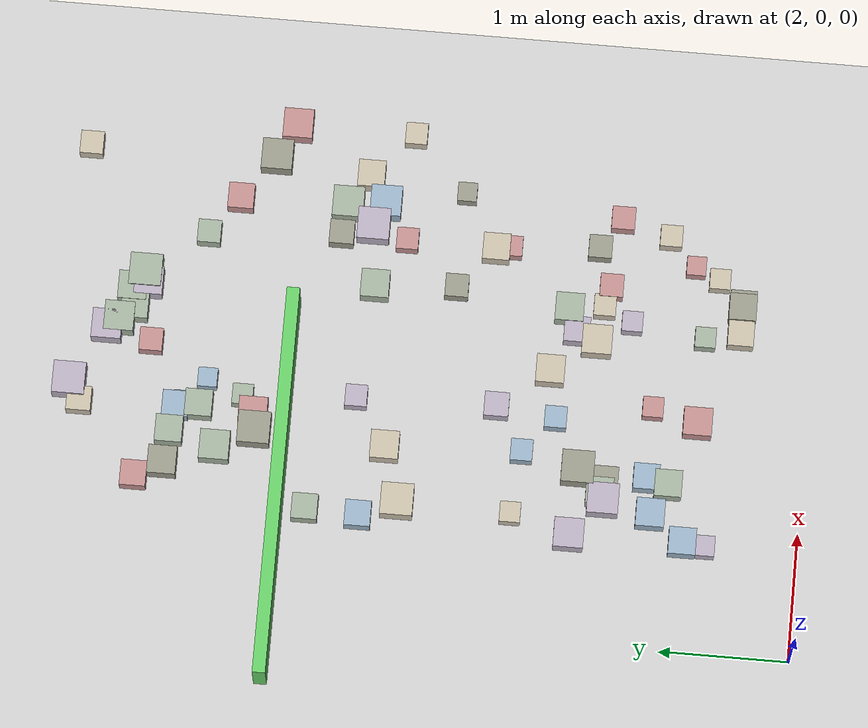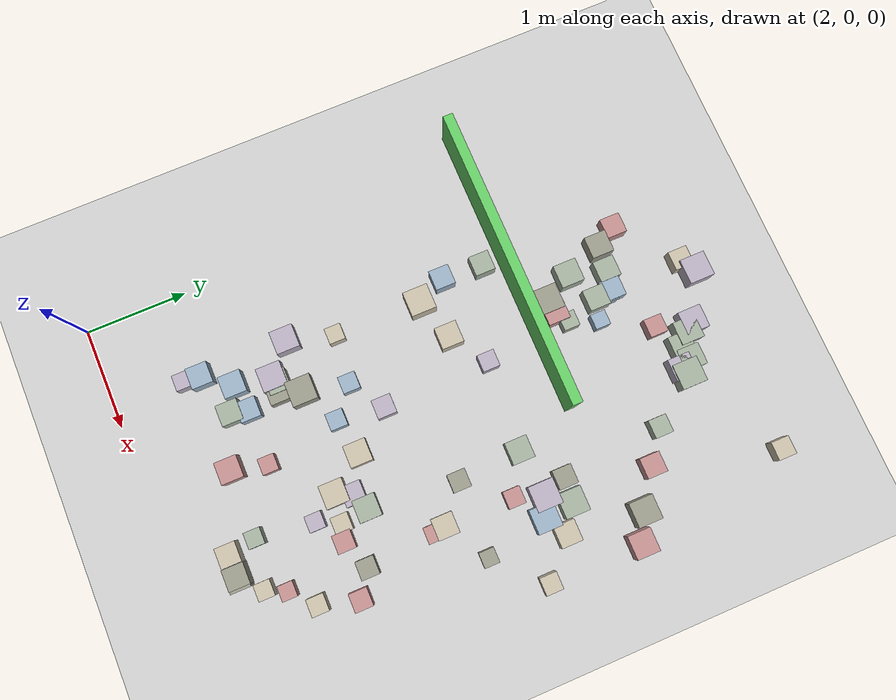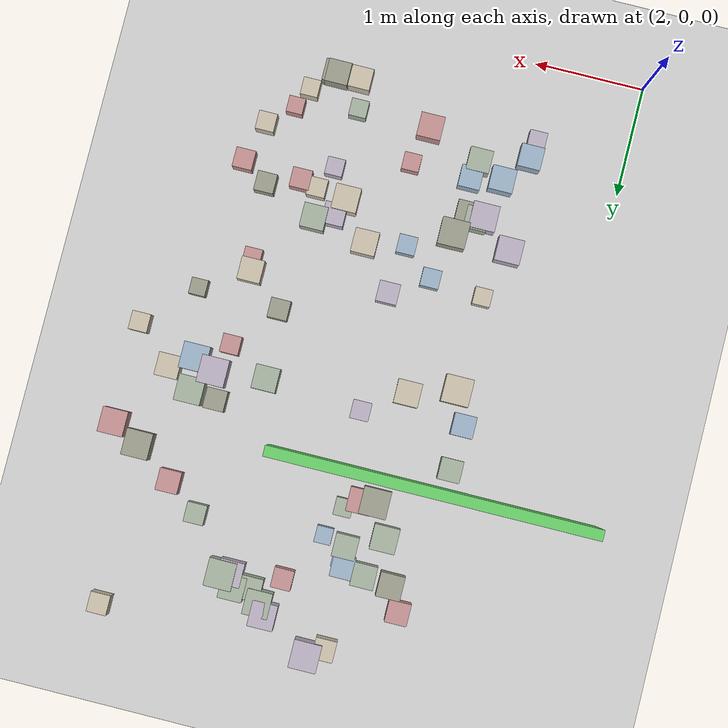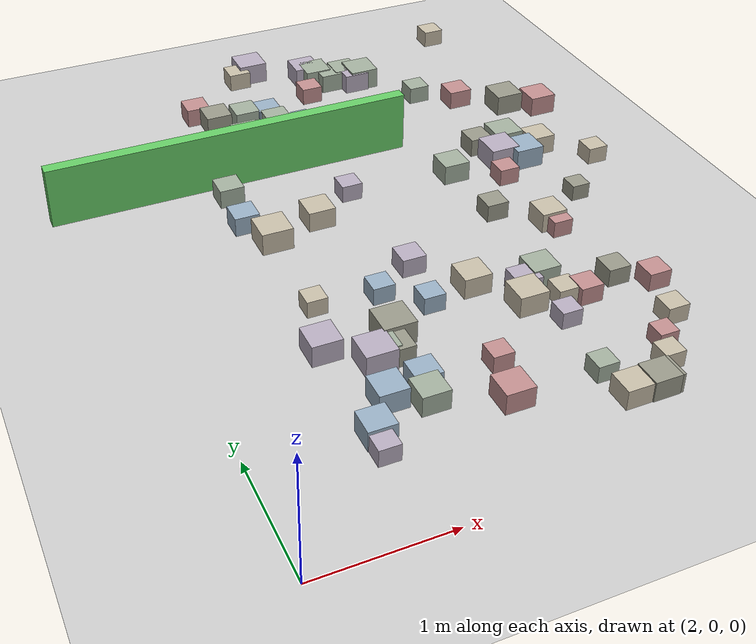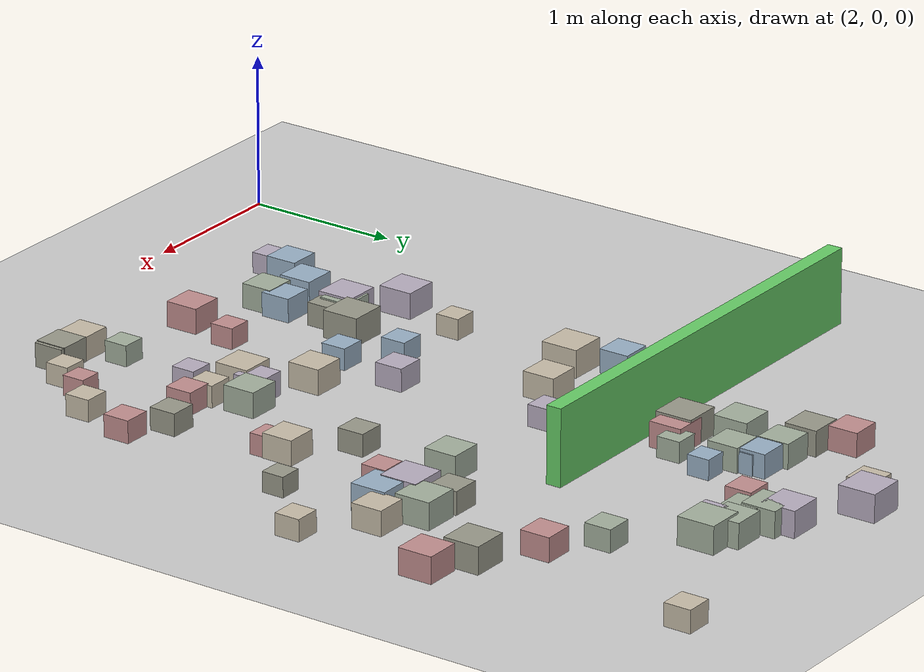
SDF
<sdf version="1.6">
 <world name="small_maze_world">
  <include><uri>model://ground_plane</uri></include>
  <include><uri>model://sun</uri></include>
  <model name="maze_wall_3">
   <static>true</static>
   <pose>3 4 0.25 0 0 0</pose>
   <link name="link">
    <collision name="collision"><geometry><box><size>3 0.1 0.5</size></box></geometry></collision>
    <visual name="visual">
     <geometry><box><size>3 0.1 0.5</size></box></geometry>
     <material><ambient>0.4 0.8 0.4 1</ambient></material>
    </visual>
   </link>
  </model>
  <model name="box_2">
   <static>false</static>
   <pose>4.61 1.88 0.05 0 0 0</pose>
   <link name="link">
    <inertial>
     <mass>0.2</mass>
     <inertia><ixx>0.001</ixx><iyy>0.001</iyy><izz>0.001</izz><ixy>0</ixy><ixz>0</ixz><iyz>0</iyz></inertia>
    </inertial>
    <collision name="collision"><geometry><box><size>0.22 0.22 0.22</size></box></geometry></collision>
    <visual name="visual">
     <geometry><box><size>0.22 0.22 0.22</size></box></geometry>
     <material><ambient>0.64 0.69 0.62 1</ambient><diffuse>0.64 0.69 0.62 1</diffuse></material>
    </visual>
   </link>
  </model>
  <model name="box_4">
   <static>false</static>
   <pose>3.29 1.02 0.05 0 0 0</pose>
   <link name="link">
    <inertial>
     <mass>0.2</mass>
     <inertia><ixx>0.001</ixx><iyy>0.001</iyy><izz>0.001</izz><ixy>0</ixy><ixz>0</ixz><iyz>0</iyz></inertia>
    </inertial>
    <collision name="collision"><geometry><box><size>0.21 0.21 0.21</size></box></geometry></collision>
    <visual name="visual">
     <geometry><box><size>0.21 0.21 0.21</size></box></geometry>
     <material><ambient>0.64 0.69 0.62 1</ambient><diffuse>0.64 0.69 0.62 1</diffuse></material>
    </visual>
   </link>
  </model>
  <model name="box_8">
   <static>false</static>
   <pose>4.44 1.81 0.05 0 0 0</pose>
   <link name="link">
    <inertial>
     <mass>0.2</mass>
     <inertia><ixx>0.001</ixx><iyy>0.001</iyy><izz>0.001</izz><ixy>0</ixy><ixz>0</ixz><iyz>0</iyz></inertia>
    </inertial>
    <collision name="collision"><geometry><box><size>0.2 0.2 0.2</size></box></geometry></collision>
    <visual name="visual">
     <geometry><box><size>0.2 0.2 0.2</size></box></geometry>
     <material><ambient>0.72 0.68 0.75 1</ambient><diffuse>0.72 0.68 0.75 1</diffuse></material>
    </visual>
   </link>
  </model>
  <model name="box_10">
   <static>false</static>
   <pose>5.89 3.17 0.05 0 0 0</pose>
   <link name="link">
    <inertial>
     <mass>0.2</mass>
     <inertia><ixx>0.001</ixx><iyy>0.001</iyy><izz>0.001</izz><ixy>0</ixy><ixz>0</ixz><iyz>0</iyz></inertia>
    </inertial>
    <collision name="collision"><geometry><box><size>0.17 0.17 0.17</size></box></geometry></collision>
    <visual name="visual">
     <geometry><box><size>0.17 0.17 0.17</size></box></geometry>
     <material><ambient>0.78 0.74 0.66 1</ambient><diffuse>0.78 0.74 0.66 1</diffuse></material>
    </visual>
   </link>
  </model>
  <model name="box_21">
   <static>false</static>
   <pose>5.11 1.68 0.05 0 0 0</pose>
   <link name="link">
    <inertial>
     <mass>0.2</mass>
     <inertia><ixx>0.001</ixx><iyy>0.001</iyy><izz>0.001</izz><ixy>0</ixy><ixz>0</ixz><iyz>0</iyz></inertia>
    </inertial>
    <collision name="collision"><geometry><box><size>0.18 0.18 0.18</size></box></geometry></collision>
    <visual name="visual">
     <geometry><box><size>0.18 0.18 0.18</size></box></geometry>
     <material><ambient>0.6 0.6 0.54 1</ambient><diffuse>0.6 0.6 0.54 1</diffuse></material>
    </visual>
   </link>
  </model>
  <model name="box_22">
   <static>false</static>
   <pose>3.6 4.84 0.05 0 0 0</pose>
   <link name="link">
    <inertial>
     <mass>0.2</mass>
     <inertia><ixx>0.001</ixx><iyy>0.001</iyy><izz>0.001</izz><ixy>0</ixy><ixz>0</ixz><iyz>0</iyz></inertia>
    </inertial>
    <collision name="collision"><geometry><box><size>0.2 0.2 0.2</size></box></geometry></collision>
    <visual name="visual">
     <geometry><box><size>0.2 0.2 0.2</size></box></geometry>
     <material><ambient>0.6 0.69 0.77 1</ambient><diffuse>0.6 0.69 0.77 1</diffuse></material>
    </visual>
   </link>
  </model>
  <model name="box_34">
   <static>false</static>
   <pose>3.03 5.11 0.05 0 0 0</pose>
   <link name="link">
    <inertial>
     <mass>0.2</mass>
     <inertia><ixx>0.001</ixx><iyy>0.001</iyy><izz>0.001</izz><ixy>0</ixy><ixz>0</ixz><iyz>0</iyz></inertia>
    </inertial>
    <collision name="collision"><geometry><box><size>0.2 0.2 0.2</size></box></geometry></collision>
    <visual name="visual">
     <geometry><box><size>0.2 0.2 0.2</size></box></geometry>
     <material><ambient>0.76 0.56 0.56 1</ambient><diffuse>0.76 0.56 0.56 1</diffuse></material>
    </visual>
   </link>
  </model>
  <model name="box_46">
   <static>false</static>
   <pose>5.24 1.14 0.05 0 0 0</pose>
   <link name="link">
    <inertial>
     <mass>0.2</mass>
     <inertia><ixx>0.001</ixx><iyy>0.001</iyy><izz>0.001</izz><ixy>0</ixy><ixz>0</ixz><iyz>0</iyz></inertia>
    </inertial>
    <collision name="collision"><geometry><box><size>0.17 0.17 0.17</size></box></geometry></collision>
    <visual name="visual">
     <geometry><box><size>0.17 0.17 0.17</size></box></geometry>
     <material><ambient>0.78 0.74 0.66 1</ambient><diffuse>0.78 0.74 0.66 1</diffuse></material>
    </visual>
   </link>
  </model>
  <model name="box_49">
   <static>false</static>
   <pose>3.8 2.38 0.05 0 0 0</pose>
   <link name="link">
    <inertial>
     <mass>0.2</mass>
     <inertia><ixx>0.001</ixx><iyy>0.001</iyy><izz>0.001</izz><ixy>0</ixy><ixz>0</ixz><iyz>0</iyz></inertia>
    </inertial>
    <collision name="collision"><geometry><box><size>0.19 0.19 0.19</size></box></geometry></collision>
    <visual name="visual">
     <geometry><box><size>0.19 0.19 0.19</size></box></geometry>
     <material><ambient>0.72 0.68 0.75 1</ambient><diffuse>0.72 0.68 0.75 1</diffuse></material>
    </visual>
   </link>
  </model>
  <model name="box_51">
   <static>false</static>
   <pose>5.35 1.52 0.05 0 0 0</pose>
   <link name="link">
    <inertial>
     <mass>0.2</mass>
     <inertia><ixx>0.001</ixx><iyy>0.001</iyy><izz>0.001</izz><ixy>0</ixy><ixz>0</ixz><iyz>0</iyz></inertia>
    </inertial>
    <collision name="collision"><geometry><box><size>0.18 0.18 0.18</size></box></geometry></collision>
    <visual name="visual">
     <geometry><box><size>0.18 0.18 0.18</size></box></geometry>
     <material><ambient>0.76 0.56 0.56 1</ambient><diffuse>0.76 0.56 0.56 1</diffuse></material>
    </visual>
   </link>
  </model>
  <model name="box_54">
   <static>false</static>
   <pose>5.89 4.09 0.05 0 0 0</pose>
   <link name="link">
    <inertial>
     <mass>0.2</mass>
     <inertia><ixx>0.001</ixx><iyy>0.001</iyy><izz>0.001</izz><ixy>0</ixy><ixz>0</ixz><iyz>0</iyz></inertia>
    </inertial>
    <collision name="collision"><geometry><box><size>0.23 0.23 0.23</size></box></geometry></collision>
    <visual name="visual">
     <geometry><box><size>0.23 0.23 0.23</size></box></geometry>
     <material><ambient>0.76 0.56 0.56 1</ambient><diffuse>0.76 0.56 0.56 1</diffuse></material>
    </visual>
   </link>
  </model>
  <model name="box_60">
   <static>false</static>
   <pose>5.54 3.49 0.05 0 0 0</pose>
   <link name="link">
    <inertial>
     <mass>0.2</mass>
     <inertia><ixx>0.001</ixx><iyy>0.001</iyy><izz>0.001</izz><ixy>0</ixy><ixz>0</ixz><iyz>0</iyz></inertia>
    </inertial>
    <collision name="collision"><geometry><box><size>0.21 0.21 0.21</size></box></geometry></collision>
    <visual name="visual">
     <geometry><box><size>0.21 0.21 0.21</size></box></geometry>
     <material><ambient>0.78 0.74 0.66 1</ambient><diffuse>0.78 0.74 0.66 1</diffuse></material>
    </visual>
   </link>
  </model>
  <model name="box_64">
   <static>false</static>
   <pose>3.05 1.14 0.05 0 0 0</pose>
   <link name="link">
    <inertial>
     <mass>0.2</mass>
     <inertia><ixx>0.001</ixx><iyy>0.001</iyy><izz>0.001</izz><ixy>0</ixy><ixz>0</ixz><iyz>0</iyz></inertia>
    </inertial>
    <collision name="collision"><geometry><box><size>0.22 0.22 0.22</size></box></geometry></collision>
    <visual name="visual">
     <geometry><box><size>0.22 0.22 0.22</size></box></geometry>
     <material><ambient>0.6 0.69 0.77 1</ambient><diffuse>0.6 0.69 0.77 1</diffuse></material>
    </visual>
   </link>
  </model>
  <model name="box_66">
   <static>false</static>
   <pose>4.93 0.74 0.05 0 0 0</pose>
   <link name="link">
    <inertial>
     <mass>0.2</mass>
     <inertia><ixx>0.001</ixx><iyy>0.001</iyy><izz>0.001</izz><ixy>0</ixy><ixz>0</ixz><iyz>0</iyz></inertia>
    </inertial>
    <collision name="collision"><geometry><box><size>0.16 0.16 0.16</size></box></geometry></collision>
    <visual name="visual">
     <geometry><box><size>0.16 0.16 0.16</size></box></geometry>
     <material><ambient>0.78 0.74 0.66 1</ambient><diffuse>0.78 0.74 0.66 1</diffuse></material>
    </visual>
   </link>
  </model>
  <model name="box_78">
   <static>false</static>
   <pose>4.55 5.13 0.05 0 0 0</pose>
   <link name="link">
    <inertial>
     <mass>0.2</mass>
     <inertia><ixx>0.001</ixx><iyy>0.001</iyy><izz>0.001</izz><ixy>0</ixy><ixz>0</ixz><iyz>0</iyz></inertia>
    </inertial>
    <collision name="collision"><geometry><box><size>0.22 0.22 0.22</size></box></geometry></collision>
    <visual name="visual">
     <geometry><box><size>0.22 0.22 0.22</size></box></geometry>
     <material><ambient>0.72 0.68 0.75 1</ambient><diffuse>0.72 0.68 0.75 1</diffuse></material>
    </visual>
   </link>
  </model>
  <model name="box_79">
   <static>false</static>
   <pose>5.14 3.44 0.05 0 0 0</pose>
   <link name="link">
    <inertial>
     <mass>0.2</mass>
     <inertia><ixx>0.001</ixx><iyy>0.001</iyy><izz>0.001</izz><ixy>0</ixy><ixz>0</ixz><iyz>0</iyz></inertia>
    </inertial>
    <collision name="collision"><geometry><box><size>0.25 0.25 0.25</size></box></geometry></collision>
    <visual name="visual">
     <geometry><box><size>0.25 0.25 0.25</size></box></geometry>
     <material><ambient>0.72 0.68 0.75 1</ambient><diffuse>0.72 0.68 0.75 1</diffuse></material>
    </visual>
   </link>
  </model>
  <model name="box_88">
   <static>false</static>
   <pose>4.54 1.39 0.05 0 0 0</pose>
   <link name="link">
    <inertial>
     <mass>0.2</mass>
     <inertia><ixx>0.001</ixx><iyy>0.001</iyy><izz>0.001</izz><ixy>0</ixy><ixz>0</ixz><iyz>0</iyz></inertia>
    </inertial>
    <collision name="collision"><geometry><box><size>0.16 0.16 0.16</size></box></geometry></collision>
    <visual name="visual">
     <geometry><box><size>0.16 0.16 0.16</size></box></geometry>
     <material><ambient>0.72 0.68 0.75 1</ambient><diffuse>0.72 0.68 0.75 1</diffuse></material>
    </visual>
   </link>
  </model>
  <model name="box_91">
   <static>false</static>
   <pose>4.5 5.25 0.05 0 0 0</pose>
   <link name="link">
    <inertial>
     <mass>0.2</mass>
     <inertia><ixx>0.001</ixx><iyy>0.001</iyy><izz>0.001</izz><ixy>0</ixy><ixz>0</ixz><iyz>0</iyz></inertia>
    </inertial>
    <collision name="collision"><geometry><box><size>0.22 0.22 0.22</size></box></geometry></collision>
    <visual name="visual">
     <geometry><box><size>0.22 0.22 0.22</size></box></geometry>
     <material><ambient>0.64 0.69 0.62 1</ambient><diffuse>0.64 0.69 0.62 1</diffuse></material>
    </visual>
   </link>
  </model>
  <model name="box_102">
   <static>false</static>
   <pose>5.06 2.36 0.05 0 0 0</pose>
   <link name="link">
    <inertial>
     <mass>0.2</mass>
     <inertia><ixx>0.001</ixx><iyy>0.001</iyy><izz>0.001</izz><ixy>0</ixy><ixz>0</ixz><iyz>0</iyz></inertia>
    </inertial>
    <collision name="collision"><geometry><box><size>0.16 0.16 0.16</size></box></geometry></collision>
    <visual name="visual">
     <geometry><box><size>0.16 0.16 0.16</size></box></geometry>
     <material><ambient>0.76 0.56 0.56 1</ambient><diffuse>0.76 0.56 0.56 1</diffuse></material>
    </visual>
   </link>
  </model>
  <model name="box_107">
   <static>false</static>
   <pose>5.64 4.24 0.05 0 0 0</pose>
   <link name="link">
    <inertial>
     <mass>0.2</mass>
     <inertia><ixx>0.001</ixx><iyy>0.001</iyy><izz>0.001</izz><ixy>0</ixy><ixz>0</ixz><iyz>0</iyz></inertia>
    </inertial>
    <collision name="collision"><geometry><box><size>0.21 0.21 0.21</size></box></geometry></collision>
    <visual name="visual">
     <geometry><box><size>0.21 0.21 0.21</size></box></geometry>
     <material><ambient>0.72 0.68 0.75 1</ambient><diffuse>0.72 0.68 0.75 1</diffuse></material>
    </visual>
   </link>
  </model>
  <model name="box_127">
   <static>false</static>
   <pose>5.04 2.48 0.05 0 0 0</pose>
   <link name="link">
    <inertial>
     <mass>0.2</mass>
     <inertia><ixx>0.001</ixx><iyy>0.001</iyy><izz>0.001</izz><ixy>0</ixy><ixz>0</ixz><iyz>0</iyz></inertia>
    </inertial>
    <collision name="collision"><geometry><box><size>0.21 0.21 0.21</size></box></geometry></collision>
    <visual name="visual">
     <geometry><box><size>0.21 0.21 0.21</size></box></geometry>
     <material><ambient>0.78 0.74 0.66 1</ambient><diffuse>0.78 0.74 0.66 1</diffuse></material>
    </visual>
   </link>
  </model>
  <model name="box_136">
   <static>false</static>
   <pose>4.67 3.39 0.05 0 0 0</pose>
   <link name="link">
    <inertial>
     <mass>0.2</mass>
     <inertia><ixx>0.001</ixx><iyy>0.001</iyy><izz>0.001</izz><ixy>0</ixy><ixz>0</ixz><iyz>0</iyz></inertia>
    </inertial>
    <collision name="collision"><geometry><box><size>0.22 0.22 0.22</size></box></geometry></collision>
    <visual name="visual">
     <geometry><box><size>0.22 0.22 0.22</size></box></geometry>
     <material><ambient>0.64 0.69 0.62 1</ambient><diffuse>0.64 0.69 0.62 1</diffuse></material>
    </visual>
   </link>
  </model>
  <model name="box_152">
   <static>false</static>
   <pose>3.46 4.22 0.05 0 0 0</pose>
   <link name="link">
    <inertial>
     <mass>0.2</mass>
     <inertia><ixx>0.001</ixx><iyy>0.001</iyy><izz>0.001</izz><ixy>0</ixy><ixz>0</ixz><iyz>0</iyz></inertia>
    </inertial>
    <collision name="collision"><geometry><box><size>0.25 0.25 0.25</size></box></geometry></collision>
    <visual name="visual">
     <geometry><box><size>0.25 0.25 0.25</size></box></geometry>
     <material><ambient>0.6 0.6 0.54 1</ambient><diffuse>0.6 0.6 0.54 1</diffuse></material>
    </visual>
   </link>
  </model>
  <model name="box_154">
   <static>false</static>
   <pose>4.09 5.07 0.05 0 0 0</pose>
   <link name="link">
    <inertial>
     <mass>0.2</mass>
     <inertia><ixx>0.001</ixx><iyy>0.001</iyy><izz>0.001</izz><ixy>0</ixy><ixz>0</ixz><iyz>0</iyz></inertia>
    </inertial>
    <collision name="collision"><geometry><box><size>0.18 0.18 0.18</size></box></geometry></collision>
    <visual name="visual">
     <geometry><box><size>0.18 0.18 0.18</size></box></geometry>
     <material><ambient>0.76 0.56 0.56 1</ambient><diffuse>0.76 0.56 0.56 1</diffuse></material>
    </visual>
   </link>
  </model>
  <model name="box_155">
   <static>false</static>
   <pose>4.25 5.33 0.05 0 0 0</pose>
   <link name="link">
    <inertial>
     <mass>0.2</mass>
     <inertia><ixx>0.001</ixx><iyy>0.001</iyy><izz>0.001</izz><ixy>0</ixy><ixz>0</ixz><iyz>0</iyz></inertia>
    </inertial>
    <collision name="collision"><geometry><box><size>0.23 0.23 0.23</size></box></geometry></collision>
    <visual name="visual">
     <geometry><box><size>0.23 0.23 0.23</size></box></geometry>
     <material><ambient>0.64 0.69 0.62 1</ambient><diffuse>0.64 0.69 0.62 1</diffuse></material>
    </visual>
   </link>
  </model>
  <model name="box_156">
   <static>false</static>
   <pose>3.72 4.33 0.05 0 0 0</pose>
   <link name="link">
    <inertial>
     <mass>0.2</mass>
     <inertia><ixx>0.001</ixx><iyy>0.001</iyy><izz>0.001</izz><ixy>0</ixy><ixz>0</ixz><iyz>0</iyz></inertia>
    </inertial>
    <collision name="collision"><geometry><box><size>0.16 0.16 0.16</size></box></geometry></collision>
    <visual name="visual">
     <geometry><box><size>0.16 0.16 0.16</size></box></geometry>
     <material><ambient>0.64 0.69 0.62 1</ambient><diffuse>0.64 0.69 0.62 1</diffuse></material>
    </visual>
   </link>
  </model>
  <model name="box_173">
   <static>false</static>
   <pose>4.81 1.57 0.05 0 0 0</pose>
   <link name="link">
    <inertial>
     <mass>0.2</mass>
     <inertia><ixx>0.001</ixx><iyy>0.001</iyy><izz>0.001</izz><ixy>0</ixy><ixz>0</ixz><iyz>0</iyz></inertia>
    </inertial>
    <collision name="collision"><geometry><box><size>0.18 0.18 0.18</size></box></geometry></collision>
    <visual name="visual">
     <geometry><box><size>0.18 0.18 0.18</size></box></geometry>
     <material><ambient>0.76 0.56 0.56 1</ambient><diffuse>0.76 0.56 0.56 1</diffuse></material>
    </visual>
   </link>
  </model>
  <model name="box_174">
   <static>false</static>
   <pose>3.88 1.18 0.05 0 0 0</pose>
   <link name="link">
    <inertial>
     <mass>0.2</mass>
     <inertia><ixx>0.001</ixx><iyy>0.001</iyy><izz>0.001</izz><ixy>0</ixy><ixz>0</ixz><iyz>0</iyz></inertia>
    </inertial>
    <collision name="collision"><geometry><box><size>0.16 0.16 0.16</size></box></geometry></collision>
    <visual name="visual">
     <geometry><box><size>0.16 0.16 0.16</size></box></geometry>
     <material><ambient>0.76 0.56 0.56 1</ambient><diffuse>0.76 0.56 0.56 1</diffuse></material>
    </visual>
   </link>
  </model>
  <model name="box_188">
   <static>false</static>
   <pose>3.41 3.21 0.05 0 0 0</pose>
   <link name="link">
    <inertial>
     <mass>0.2</mass>
     <inertia><ixx>0.001</ixx><iyy>0.001</iyy><izz>0.001</izz><ixy>0</ixy><ixz>0</ixz><iyz>0</iyz></inertia>
    </inertial>
    <collision name="collision"><geometry><box><size>0.22 0.22 0.22</size></box></geometry></collision>
    <visual name="visual">
     <geometry><box><size>0.22 0.22 0.22</size></box></geometry>
     <material><ambient>0.78 0.74 0.66 1</ambient><diffuse>0.78 0.74 0.66 1</diffuse></material>
    </visual>
   </link>
  </model>
  <model name="box_193">
   <static>false</static>
   <pose>2.86 3.37 0.05 0 0 0</pose>
   <link name="link">
    <inertial>
     <mass>0.2</mass>
     <inertia><ixx>0.001</ixx><iyy>0.001</iyy><izz>0.001</izz><ixy>0</ixy><ixz>0</ixz><iyz>0</iyz></inertia>
    </inertial>
    <collision name="collision"><geometry><box><size>0.2 0.2 0.2</size></box></geometry></collision>
    <visual name="visual">
     <geometry><box><size>0.2 0.2 0.2</size></box></geometry>
     <material><ambient>0.6 0.69 0.77 1</ambient><diffuse>0.6 0.69 0.77 1</diffuse></material>
    </visual>
   </link>
  </model>
  <model name="box_197">
   <static>false</static>
   <pose>4.65 1.61 0.05 0 0 0</pose>
   <link name="link">
    <inertial>
     <mass>0.2</mass>
     <inertia><ixx>0.001</ixx><iyy>0.001</iyy><izz>0.001</izz><ixy>0</ixy><ixz>0</ixz><iyz>0</iyz></inertia>
    </inertial>
    <collision name="collision"><geometry><box><size>0.17 0.17 0.17</size></box></geometry></collision>
    <visual name="visual">
     <geometry><box><size>0.17 0.17 0.17</size></box></geometry>
     <material><ambient>0.78 0.74 0.66 1</ambient><diffuse>0.78 0.74 0.66 1</diffuse></material>
    </visual>
   </link>
  </model>
  <model name="box_198">
   <static>false</static>
   <pose>3.74 1.92 0.05 0 0 0</pose>
   <link name="link">
    <inertial>
     <mass>0.2</mass>
     <inertia><ixx>0.001</ixx><iyy>0.001</iyy><izz>0.001</izz><ixy>0</ixy><ixz>0</ixz><iyz>0</iyz></inertia>
    </inertial>
    <collision name="collision"><geometry><box><size>0.17 0.17 0.17</size></box></geometry></collision>
    <visual name="visual">
     <geometry><box><size>0.17 0.17 0.17</size></box></geometry>
     <material><ambient>0.6 0.69 0.77 1</ambient><diffuse>0.6 0.69 0.77 1</diffuse></material>
    </visual>
   </link>
  </model>
  <model name="box_201">
   <static>false</static>
   <pose>3.36 1.72 0.05 0 0 0</pose>
   <link name="link">
    <inertial>
     <mass>0.2</mass>
     <inertia><ixx>0.001</ixx><iyy>0.001</iyy><izz>0.001</izz><ixy>0</ixy><ixz>0</ixz><iyz>0</iyz></inertia>
    </inertial>
    <collision name="collision"><geometry><box><size>0.25 0.25 0.25</size></box></geometry></collision>
    <visual name="visual">
     <geometry><box><size>0.25 0.25 0.25</size></box></geometry>
     <material><ambient>0.6 0.6 0.54 1</ambient><diffuse>0.6 0.6 0.54 1</diffuse></material>
    </visual>
   </link>
  </model>
  <model name="box_202">
   <static>false</static>
   <pose>4.51 0.55 0.05 0 0 0</pose>
   <link name="link">
    <inertial>
     <mass>0.2</mass>
     <inertia><ixx>0.001</ixx><iyy>0.001</iyy><izz>0.001</izz><ixy>0</ixy><ixz>0</ixz><iyz>0</iyz></inertia>
    </inertial>
    <collision name="collision"><geometry><box><size>0.2 0.2 0.2</size></box></geometry></collision>
    <visual name="visual">
     <geometry><box><size>0.2 0.2 0.2</size></box></geometry>
     <material><ambient>0.78 0.74 0.66 1</ambient><diffuse>0.78 0.74 0.66 1</diffuse></material>
    </visual>
   </link>
  </model>
  <model name="box_203">
   <static>false</static>
   <pose>2.84 1.75 0.05 0 0 0</pose>
   <link name="link">
    <inertial>
     <mass>0.2</mass>
     <inertia><ixx>0.001</ixx><iyy>0.001</iyy><izz>0.001</izz><ixy>0</ixy><ixz>0</ixz><iyz>0</iyz></inertia>
    </inertial>
    <collision name="collision"><geometry><box><size>0.23 0.23 0.23</size></box></geometry></collision>
    <visual name="visual">
     <geometry><box><size>0.23 0.23 0.23</size></box></geometry>
     <material><ambient>0.72 0.68 0.75 1</ambient><diffuse>0.72 0.68 0.75 1</diffuse></material>
    </visual>
   </link>
  </model>
  <model name="box_206">
   <static>false</static>
   <pose>5.46 2.74 0.05 0 0 0</pose>
   <link name="link">
    <inertial>
     <mass>0.2</mass>
     <inertia><ixx>0.001</ixx><iyy>0.001</iyy><izz>0.001</izz><ixy>0</ixy><ixz>0</ixz><iyz>0</iyz></inertia>
    </inertial>
    <collision name="collision"><geometry><box><size>0.15 0.15 0.15</size></box></geometry></collision>
    <visual name="visual">
     <geometry><box><size>0.15 0.15 0.15</size></box></geometry>
     <material><ambient>0.6 0.6 0.54 1</ambient><diffuse>0.6 0.6 0.54 1</diffuse></material>
    </visual>
   </link>
  </model>
  <model name="box_208">
   <static>false</static>
   <pose>3.78 3.46 0.05 0 0 0</pose>
   <link name="link">
    <inertial>
     <mass>0.2</mass>
     <inertia><ixx>0.001</ixx><iyy>0.001</iyy><izz>0.001</izz><ixy>0</ixy><ixz>0</ixz><iyz>0</iyz></inertia>
    </inertial>
    <collision name="collision"><geometry><box><size>0.17 0.17 0.17</size></box></geometry></collision>
    <visual name="visual">
     <geometry><box><size>0.17 0.17 0.17</size></box></geometry>
     <material><ambient>0.72 0.68 0.75 1</ambient><diffuse>0.72 0.68 0.75 1</diffuse></material>
    </visual>
   </link>
  </model>
  <model name="box_209">
   <static>false</static>
   <pose>3.79 0.83 0.05 0 0 0</pose>
   <link name="link">
    <inertial>
     <mass>0.2</mass>
     <inertia><ixx>0.001</ixx><iyy>0.001</iyy><izz>0.001</izz><ixy>0</ixy><ixz>0</ixz><iyz>0</iyz></inertia>
    </inertial>
    <collision name="collision"><geometry><box><size>0.22 0.22 0.22</size></box></geometry></collision>
    <visual name="visual">
     <geometry><box><size>0.22 0.22 0.22</size></box></geometry>
     <material><ambient>0.76 0.56 0.56 1</ambient><diffuse>0.76 0.56 0.56 1</diffuse></material>
    </visual>
   </link>
  </model>
  <model name="box_221">
   <static>false</static>
   <pose>3.29 1.5 0.05 0 0 0</pose>
   <link name="link">
    <inertial>
     <mass>0.2</mass>
     <inertia><ixx>0.001</ixx><iyy>0.001</iyy><izz>0.001</izz><ixy>0</ixy><ixz>0</ixz><iyz>0</iyz></inertia>
    </inertial>
    <collision name="collision"><geometry><box><size>0.19 0.19 0.19</size></box></geometry></collision>
    <visual name="visual">
     <geometry><box><size>0.19 0.19 0.19</size></box></geometry>
     <material><ambient>0.6 0.6 0.54 1</ambient><diffuse>0.6 0.6 0.54 1</diffuse></material>
    </visual>
   </link>
  </model>
  <model name="box_235">
   <static>false</static>
   <pose>4.63 5.16 0.05 0 0 0</pose>
   <link name="link">
    <inertial>
     <mass>0.2</mass>
     <inertia><ixx>0.001</ixx><iyy>0.001</iyy><izz>0.001</izz><ixy>0</ixy><ixz>0</ixz><iyz>0</iyz></inertia>
    </inertial>
    <collision name="collision"><geometry><box><size>0.25 0.25 0.25</size></box></geometry></collision>
    <visual name="visual">
     <geometry><box><size>0.25 0.25 0.25</size></box></geometry>
     <material><ambient>0.64 0.69 0.62 1</ambient><diffuse>0.64 0.69 0.62 1</diffuse></material>
    </visual>
   </link>
  </model>
  <model name="box_238">
   <static>false</static>
   <pose>5.02 0.93 0.05 0 0 0</pose>
   <link name="link">
    <inertial>
     <mass>0.2</mass>
     <inertia><ixx>0.001</ixx><iyy>0.001</iyy><izz>0.001</izz><ixy>0</ixy><ixz>0</ixz><iyz>0</iyz></inertia>
    </inertial>
    <collision name="collision"><geometry><box><size>0.15 0.15 0.15</size></box></geometry></collision>
    <visual name="visual">
     <geometry><box><size>0.15 0.15 0.15</size></box></geometry>
     <material><ambient>0.76 0.56 0.56 1</ambient><diffuse>0.76 0.56 0.56 1</diffuse></material>
    </visual>
   </link>
  </model>
  <model name="box_242">
   <static>false</static>
   <pose>4.46 0.82 0.05 0 0 0</pose>
   <link name="link">
    <inertial>
     <mass>0.2</mass>
     <inertia><ixx>0.001</ixx><iyy>0.001</iyy><izz>0.001</izz><ixy>0</ixy><ixz>0</ixz><iyz>0</iyz></inertia>
    </inertial>
    <collision name="collision"><geometry><box><size>0.16 0.16 0.16</size></box></geometry></collision>
    <visual name="visual">
     <geometry><box><size>0.16 0.16 0.16</size></box></geometry>
     <material><ambient>0.64 0.69 0.62 1</ambient><diffuse>0.64 0.69 0.62 1</diffuse></material>
    </visual>
   </link>
  </model>
  <model name="box_245">
   <static>false</static>
   <pose>4.37 1.65 0.05 0 0 0</pose>
   <link name="link">
    <inertial>
     <mass>0.2</mass>
     <inertia><ixx>0.001</ixx><iyy>0.001</iyy><izz>0.001</izz><ixy>0</ixy><ixz>0</ixz><iyz>0</iyz></inertia>
    </inertial>
    <collision name="collision"><geometry><box><size>0.23 0.23 0.23</size></box></geometry></collision>
    <visual name="visual">
     <geometry><box><size>0.23 0.23 0.23</size></box></geometry>
     <material><ambient>0.78 0.74 0.66 1</ambient><diffuse>0.78 0.74 0.66 1</diffuse></material>
    </visual>
   </link>
  </model>
  <model name="box_250">
   <static>false</static>
   <pose>4.75 0.55 0.05 0 0 0</pose>
   <link name="link">
    <inertial>
     <mass>0.2</mass>
     <inertia><ixx>0.001</ixx><iyy>0.001</iyy><izz>0.001</izz><ixy>0</ixy><ixz>0</ixz><iyz>0</iyz></inertia>
    </inertial>
    <collision name="collision"><geometry><box><size>0.2 0.2 0.2</size></box></geometry></collision>
    <visual name="visual">
     <geometry><box><size>0.2 0.2 0.2</size></box></geometry>
     <material><ambient>0.6 0.6 0.54 1</ambient><diffuse>0.6 0.6 0.54 1</diffuse></material>
    </visual>
   </link>
  </model>
  <model name="box_255">
   <static>false</static>
   <pose>5.05 3.17 0.05 0 0 0</pose>
   <link name="link">
    <inertial>
     <mass>0.2</mass>
     <inertia><ixx>0.001</ixx><iyy>0.001</iyy><izz>0.001</izz><ixy>0</ixy><ixz>0</ixz><iyz>0</iyz></inertia>
    </inertial>
    <collision name="collision"><geometry><box><size>0.17 0.17 0.17</size></box></geometry></collision>
    <visual name="visual">
     <geometry><box><size>0.17 0.17 0.17</size></box></geometry>
     <material><ambient>0.76 0.56 0.56 1</ambient><diffuse>0.76 0.56 0.56 1</diffuse></material>
    </visual>
   </link>
  </model>
  <model name="box_261">
   <static>false</static>
   <pose>3.33 1.19 0.05 0 0 0</pose>
   <link name="link">
    <inertial>
     <mass>0.2</mass>
     <inertia><ixx>0.001</ixx><iyy>0.001</iyy><izz>0.001</izz><ixy>0</ixy><ixz>0</ixz><iyz>0</iyz></inertia>
    </inertial>
    <collision name="collision"><geometry><box><size>0.2 0.2 0.2</size></box></geometry></collision>
    <visual name="visual">
     <geometry><box><size>0.2 0.2 0.2</size></box></geometry>
     <material><ambient>0.6 0.69 0.77 1</ambient><diffuse>0.6 0.69 0.77 1</diffuse></material>
    </visual>
   </link>
  </model>
  <model name="box_280">
   <static>false</static>
   <pose>3.58 5.58 0.05 0 0 0</pose>
   <link name="link">
    <inertial>
     <mass>0.2</mass>
     <inertia><ixx>0.001</ixx><iyy>0.001</iyy><izz>0.001</izz><ixy>0</ixy><ixz>0</ixz><iyz>0</iyz></inertia>
    </inertial>
    <collision name="collision"><geometry><box><size>0.19 0.19 0.19</size></box></geometry></collision>
    <visual name="visual">
     <geometry><box><size>0.19 0.19 0.19</size></box></geometry>
     <material><ambient>0.78 0.74 0.66 1</ambient><diffuse>0.78 0.74 0.66 1</diffuse></material>
    </visual>
   </link>
  </model>
  <model name="box_283">
   <static>false</static>
   <pose>3.62 4.66 0.05 0 0 0</pose>
   <link name="link">
    <inertial>
     <mass>0.2</mass>
     <inertia><ixx>0.001</ixx><iyy>0.001</iyy><izz>0.001</izz><ixy>0</ixy><ixz>0</ixz><iyz>0</iyz></inertia>
    </inertial>
    <collision name="collision"><geometry><box><size>0.21 0.21 0.21</size></box></geometry></collision>
    <visual name="visual">
     <geometry><box><size>0.21 0.21 0.21</size></box></geometry>
     <material><ambient>0.64 0.69 0.62 1</ambient><diffuse>0.64 0.69 0.62 1</diffuse></material>
    </visual>
   </link>
  </model>
  <model name="box_285">
   <static>false</static>
   <pose>3.46 2.16 0.05 0 0 0</pose>
   <link name="link">
    <inertial>
     <mass>0.2</mass>
     <inertia><ixx>0.001</ixx><iyy>0.001</iyy><izz>0.001</izz><ixy>0</ixy><ixz>0</ixz><iyz>0</iyz></inertia>
    </inertial>
    <collision name="collision"><geometry><box><size>0.17 0.17 0.17</size></box></geometry></collision>
    <visual name="visual">
     <geometry><box><size>0.17 0.17 0.17</size></box></geometry>
     <material><ambient>0.6 0.69 0.77 1</ambient><diffuse>0.6 0.69 0.77 1</diffuse></material>
    </visual>
   </link>
  </model>
  <model name="box_295">
   <static>false</static>
   <pose>3.63 4.78 0.05 0 0 0</pose>
   <link name="link">
    <inertial>
     <mass>0.2</mass>
     <inertia><ixx>0.001</ixx><iyy>0.001</iyy><izz>0.001</izz><ixy>0</ixy><ixz>0</ixz><iyz>0</iyz></inertia>
    </inertial>
    <collision name="collision"><geometry><box><size>0.16 0.16 0.16</size></box></geometry></collision>
    <visual name="visual">
     <geometry><box><size>0.16 0.16 0.16</size></box></geometry>
     <material><ambient>0.6 0.69 0.77 1</ambient><diffuse>0.6 0.69 0.77 1</diffuse></material>
    </visual>
   </link>
  </model>
  <model name="box_305">
   <static>false</static>
   <pose>3.59 4.24 0.05 0 0 0</pose>
   <link name="link">
    <inertial>
     <mass>0.2</mass>
     <inertia><ixx>0.001</ixx><iyy>0.001</iyy><izz>0.001</izz><ixy>0</ixy><ixz>0</ixz><iyz>0</iyz></inertia>
    </inertial>
    <collision name="collision"><geometry><box><size>0.22 0.22 0.22</size></box></geometry></collision>
    <visual name="visual">
     <geometry><box><size>0.22 0.22 0.22</size></box></geometry>
     <material><ambient>0.76 0.56 0.56 1</ambient><diffuse>0.76 0.56 0.56 1</diffuse></material>
    </visual>
   </link>
  </model>
  <model name="box_311">
   <static>false</static>
   <pose>2.97 2.21 0.05 0 0 0</pose>
   <link name="link">
    <inertial>
     <mass>0.2</mass>
     <inertia><ixx>0.001</ixx><iyy>0.001</iyy><izz>0.001</izz><ixy>0</ixy><ixz>0</ixz><iyz>0</iyz></inertia>
    </inertial>
    <collision name="collision"><geometry><box><size>0.16 0.16 0.16</size></box></geometry></collision>
    <visual name="visual">
     <geometry><box><size>0.16 0.16 0.16</size></box></geometry>
     <material><ambient>0.78 0.74 0.66 1</ambient><diffuse>0.78 0.74 0.66 1</diffuse></material>
    </visual>
   </link>
  </model>
  <model name="box_312">
   <static>false</static>
   <pose>4.18 5.42 0.05 0 0 0</pose>
   <link name="link">
    <inertial>
     <mass>0.2</mass>
     <inertia><ixx>0.001</ixx><iyy>0.001</iyy><izz>0.001</izz><ixy>0</ixy><ixz>0</ixz><iyz>0</iyz></inertia>
    </inertial>
    <collision name="collision"><geometry><box><size>0.23 0.23 0.23</size></box></geometry></collision>
    <visual name="visual">
     <geometry><box><size>0.23 0.23 0.23</size></box></geometry>
     <material><ambient>0.72 0.68 0.75 1</ambient><diffuse>0.72 0.68 0.75 1</diffuse></material>
    </visual>
   </link>
  </model>
  <model name="box_327">
   <static>false</static>
   <pose>5.61 5.67 0.05 0 0 0</pose>
   <link name="link">
    <inertial>
     <mass>0.2</mass>
     <inertia><ixx>0.001</ixx><iyy>0.001</iyy><izz>0.001</izz><ixy>0</ixy><ixz>0</ixz><iyz>0</iyz></inertia>
    </inertial>
    <collision name="collision"><geometry><box><size>0.18 0.18 0.18</size></box></geometry></collision>
    <visual name="visual">
     <geometry><box><size>0.18 0.18 0.18</size></box></geometry>
     <material><ambient>0.78 0.74 0.66 1</ambient><diffuse>0.78 0.74 0.66 1</diffuse></material>
    </visual>
   </link>
  </model>
  <model name="box_332">
   <static>false</static>
   <pose>2.88 3.78 0.05 0 0 0</pose>
   <link name="link">
    <inertial>
     <mass>0.2</mass>
     <inertia><ixx>0.001</ixx><iyy>0.001</iyy><izz>0.001</izz><ixy>0</ixy><ixz>0</ixz><iyz>0</iyz></inertia>
    </inertial>
    <collision name="collision"><geometry><box><size>0.2 0.2 0.2</size></box></geometry></collision>
    <visual name="visual">
     <geometry><box><size>0.2 0.2 0.2</size></box></geometry>
     <material><ambient>0.64 0.69 0.62 1</ambient><diffuse>0.64 0.69 0.62 1</diffuse></material>
    </visual>
   </link>
  </model>
  <model name="box_341">
   <static>false</static>
   <pose>3.73 5.67 0.05 0 0 0</pose>
   <link name="link">
    <inertial>
     <mass>0.2</mass>
     <inertia><ixx>0.001</ixx><iyy>0.001</iyy><izz>0.001</izz><ixy>0</ixy><ixz>0</ixz><iyz>0</iyz></inertia>
    </inertial>
    <collision name="collision"><geometry><box><size>0.25 0.25 0.25</size></box></geometry></collision>
    <visual name="visual">
     <geometry><box><size>0.25 0.25 0.25</size></box></geometry>
     <material><ambient>0.72 0.68 0.75 1</ambient><diffuse>0.72 0.68 0.75 1</diffuse></material>
    </visual>
   </link>
  </model>
  <model name="box_349">
   <static>false</static>
   <pose>5.33 3.36 0.05 0 0 0</pose>
   <link name="link">
    <inertial>
     <mass>0.2</mass>
     <inertia><ixx>0.001</ixx><iyy>0.001</iyy><izz>0.001</izz><ixy>0</ixy><ixz>0</ixz><iyz>0</iyz></inertia>
    </inertial>
    <collision name="collision"><geometry><box><size>0.24 0.24 0.24</size></box></geometry></collision>
    <visual name="visual">
     <geometry><box><size>0.24 0.24 0.24</size></box></geometry>
     <material><ambient>0.6 0.69 0.77 1</ambient><diffuse>0.6 0.69 0.77 1</diffuse></material>
    </visual>
   </link>
  </model>
  <model name="box_352">
   <static>false</static>
   <pose>4.11 1.99 0.05 0 0 0</pose>
   <link name="link">
    <inertial>
     <mass>0.2</mass>
     <inertia><ixx>0.001</ixx><iyy>0.001</iyy><izz>0.001</izz><ixy>0</ixy><ixz>0</ixz><iyz>0</iyz></inertia>
    </inertial>
    <collision name="collision"><geometry><box><size>0.22 0.22 0.22</size></box></geometry></collision>
    <visual name="visual">
     <geometry><box><size>0.22 0.22 0.22</size></box></geometry>
     <material><ambient>0.78 0.74 0.66 1</ambient><diffuse>0.78 0.74 0.66 1</diffuse></material>
    </visual>
   </link>
  </model>
  <model name="box_375">
   <static>false</static>
   <pose>3.19 1.54 0.05 0 0 0</pose>
   <link name="link">
    <inertial>
     <mass>0.2</mass>
     <inertia><ixx>0.001</ixx><iyy>0.001</iyy><izz>0.001</izz><ixy>0</ixy><ixz>0</ixz><iyz>0</iyz></inertia>
    </inertial>
    <collision name="collision"><geometry><box><size>0.21 0.21 0.21</size></box></geometry></collision>
    <visual name="visual">
     <geometry><box><size>0.21 0.21 0.21</size></box></geometry>
     <material><ambient>0.64 0.69 0.62 1</ambient><diffuse>0.64 0.69 0.62 1</diffuse></material>
    </visual>
   </link>
  </model>
  <model name="box_377">
   <static>false</static>
   <pose>5.28 4.48 0.05 0 0 0</pose>
   <link name="link">
    <inertial>
     <mass>0.2</mass>
     <inertia><ixx>0.001</ixx><iyy>0.001</iyy><izz>0.001</izz><ixy>0</ixy><ixz>0</ixz><iyz>0</iyz></inertia>
    </inertial>
    <collision name="collision"><geometry><box><size>0.2 0.2 0.2</size></box></geometry></collision>
    <visual name="visual">
     <geometry><box><size>0.2 0.2 0.2</size></box></geometry>
     <material><ambient>0.76 0.56 0.56 1</ambient><diffuse>0.76 0.56 0.56 1</diffuse></material>
    </visual>
   </link>
  </model>
  <model name="box_380">
   <static>false</static>
   <pose>5.63 4.23 0.05 0 0 0</pose>
   <link name="link">
    <inertial>
     <mass>0.2</mass>
     <inertia><ixx>0.001</ixx><iyy>0.001</iyy><izz>0.001</izz><ixy>0</ixy><ixz>0</ixz><iyz>0</iyz></inertia>
    </inertial>
    <collision name="collision"><geometry><box><size>0.24 0.24 0.24</size></box></geometry></collision>
    <visual name="visual">
     <geometry><box><size>0.24 0.24 0.24</size></box></geometry>
     <material><ambient>0.6 0.6 0.54 1</ambient><diffuse>0.6 0.6 0.54 1</diffuse></material>
    </visual>
   </link>
  </model>
  <model name="box_389">
   <static>false</static>
   <pose>2.83 0.71 0.05 0 0 0</pose>
   <link name="link">
    <inertial>
     <mass>0.2</mass>
     <inertia><ixx>0.001</ixx><iyy>0.001</iyy><izz>0.001</izz><ixy>0</ixy><ixz>0</ixz><iyz>0</iyz></inertia>
    </inertial>
    <collision name="collision"><geometry><box><size>0.16 0.16 0.16</size></box></geometry></collision>
    <visual name="visual">
     <geometry><box><size>0.16 0.16 0.16</size></box></geometry>
     <material><ambient>0.72 0.68 0.75 1</ambient><diffuse>0.72 0.68 0.75 1</diffuse></material>
    </visual>
   </link>
  </model>
  <model name="box_394">
   <static>false</static>
   <pose>2.85 0.88 0.05 0 0 0</pose>
   <link name="link">
    <inertial>
     <mass>0.2</mass>
     <inertia><ixx>0.001</ixx><iyy>0.001</iyy><izz>0.001</izz><ixy>0</ixy><ixz>0</ixz><iyz>0</iyz></inertia>
    </inertial>
    <collision name="collision"><geometry><box><size>0.21 0.21 0.21</size></box></geometry></collision>
    <visual name="visual">
     <geometry><box><size>0.21 0.21 0.21</size></box></geometry>
     <material><ambient>0.6 0.69 0.77 1</ambient><diffuse>0.6 0.69 0.77 1</diffuse></material>
    </visual>
   </link>
  </model>
  <model name="box_395">
   <static>false</static>
   <pose>5.06 3.68 0.05 0 0 0</pose>
   <link name="link">
    <inertial>
     <mass>0.2</mass>
     <inertia><ixx>0.001</ixx><iyy>0.001</iyy><izz>0.001</izz><ixy>0</ixy><ixz>0</ixz><iyz>0</iyz></inertia>
    </inertial>
    <collision name="collision"><geometry><box><size>0.19 0.19 0.19</size></box></geometry></collision>
    <visual name="visual">
     <geometry><box><size>0.19 0.19 0.19</size></box></geometry>
     <material><ambient>0.6 0.6 0.54 1</ambient><diffuse>0.6 0.6 0.54 1</diffuse></material>
    </visual>
   </link>
  </model>
  <model name="box_398">
   <static>false</static>
   <pose>2.99 3.08 0.05 0 0 0</pose>
   <link name="link">
    <inertial>
     <mass>0.2</mass>
     <inertia><ixx>0.001</ixx><iyy>0.001</iyy><izz>0.001</izz><ixy>0</ixy><ixz>0</ixz><iyz>0</iyz></inertia>
    </inertial>
    <collision name="collision"><geometry><box><size>0.25 0.25 0.25</size></box></geometry></collision>
    <visual name="visual">
     <geometry><box><size>0.25 0.25 0.25</size></box></geometry>
     <material><ambient>0.78 0.74 0.66 1</ambient><diffuse>0.78 0.74 0.66 1</diffuse></material>
    </visual>
   </link>
  </model>
  <model name="box_399">
   <static>false</static>
   <pose>3.4 4.87 0.05 0 0 0</pose>
   <link name="link">
    <inertial>
     <mass>0.2</mass>
     <inertia><ixx>0.001</ixx><iyy>0.001</iyy><izz>0.001</izz><ixy>0</ixy><ixz>0</ixz><iyz>0</iyz></inertia>
    </inertial>
    <collision name="collision"><geometry><box><size>0.21 0.21 0.21</size></box></geometry></collision>
    <visual name="visual">
     <geometry><box><size>0.21 0.21 0.21</size></box></geometry>
     <material><ambient>0.64 0.69 0.62 1</ambient><diffuse>0.64 0.69 0.62 1</diffuse></material>
    </visual>
   </link>
  </model>
  <model name="box_407">
   <static>false</static>
   <pose>3.3 4.51 0.05 0 0 0</pose>
   <link name="link">
    <inertial>
     <mass>0.2</mass>
     <inertia><ixx>0.001</ixx><iyy>0.001</iyy><izz>0.001</izz><ixy>0</ixy><ixz>0</ixz><iyz>0</iyz></inertia>
    </inertial>
    <collision name="collision"><geometry><box><size>0.23 0.23 0.23</size></box></geometry></collision>
    <visual name="visual">
     <geometry><box><size>0.23 0.23 0.23</size></box></geometry>
     <material><ambient>0.64 0.69 0.62 1</ambient><diffuse>0.64 0.69 0.62 1</diffuse></material>
    </visual>
   </link>
  </model>
  <model name="box_417">
   <static>false</static>
   <pose>4.72 0.55 0.05 0 0 0</pose>
   <link name="link">
    <inertial>
     <mass>0.2</mass>
     <inertia><ixx>0.001</ixx><iyy>0.001</iyy><izz>0.001</izz><ixy>0</ixy><ixz>0</ixz><iyz>0</iyz></inertia>
    </inertial>
    <collision name="collision"><geometry><box><size>0.21 0.21 0.21</size></box></geometry></collision>
    <visual name="visual">
     <geometry><box><size>0.21 0.21 0.21</size></box></geometry>
     <material><ambient>0.6 0.6 0.54 1</ambient><diffuse>0.6 0.6 0.54 1</diffuse></material>
    </visual>
   </link>
  </model>
  <model name="box_423">
   <static>false</static>
   <pose>4.35 5.22 0.05 0 0 0</pose>
   <link name="link">
    <inertial>
     <mass>0.2</mass>
     <inertia><ixx>0.001</ixx><iyy>0.001</iyy><izz>0.001</izz><ixy>0</ixy><ixz>0</ixz><iyz>0</iyz></inertia>
    </inertial>
    <collision name="collision"><geometry><box><size>0.21 0.21 0.21</size></box></geometry></collision>
    <visual name="visual">
     <geometry><box><size>0.21 0.21 0.21</size></box></geometry>
     <material><ambient>0.64 0.69 0.62 1</ambient><diffuse>0.64 0.69 0.62 1</diffuse></material>
    </visual>
   </link>
  </model>
  <model name="box_424">
   <static>false</static>
   <pose>3.13 1.51 0.05 0 0 0</pose>
   <link name="link">
    <inertial>
     <mass>0.2</mass>
     <inertia><ixx>0.001</ixx><iyy>0.001</iyy><izz>0.001</izz><ixy>0</ixy><ixz>0</ixz><iyz>0</iyz></inertia>
    </inertial>
    <collision name="collision"><geometry><box><size>0.24 0.24 0.24</size></box></geometry></collision>
    <visual name="visual">
     <geometry><box><size>0.24 0.24 0.24</size></box></geometry>
     <material><ambient>0.72 0.68 0.75 1</ambient><diffuse>0.72 0.68 0.75 1</diffuse></material>
    </visual>
   </link>
  </model>
  <model name="box_426">
   <static>false</static>
   <pose>3.15 4.9 0.05 0 0 0</pose>
   <link name="link">
    <inertial>
     <mass>0.2</mass>
     <inertia><ixx>0.001</ixx><iyy>0.001</iyy><izz>0.001</izz><ixy>0</ixy><ixz>0</ixz><iyz>0</iyz></inertia>
    </inertial>
    <collision name="collision"><geometry><box><size>0.22 0.22 0.22</size></box></geometry></collision>
    <visual name="visual">
     <geometry><box><size>0.22 0.22 0.22</size></box></geometry>
     <material><ambient>0.6 0.6 0.54 1</ambient><diffuse>0.6 0.6 0.54 1</diffuse></material>
    </visual>
   </link>
  </model>
  <model name="box_433">
   <static>false</static>
   <pose>3.83 4.61 0.05 0 0 0</pose>
   <link name="link">
    <inertial>
     <mass>0.2</mass>
     <inertia><ixx>0.001</ixx><iyy>0.001</iyy><izz>0.001</izz><ixy>0</ixy><ixz>0</ixz><iyz>0</iyz></inertia>
    </inertial>
    <collision name="collision"><geometry><box><size>0.15 0.15 0.15</size></box></geometry></collision>
    <visual name="visual">
     <geometry><box><size>0.15 0.15 0.15</size></box></geometry>
     <material><ambient>0.6 0.69 0.77 1</ambient><diffuse>0.6 0.69 0.77 1</diffuse></material>
    </visual>
   </link>
  </model>
  <model name="box_435">
   <static>false</static>
   <pose>4.98 4.7 0.05 0 0 0</pose>
   <link name="link">
    <inertial>
     <mass>0.2</mass>
     <inertia><ixx>0.001</ixx><iyy>0.001</iyy><izz>0.001</izz><ixy>0</ixy><ixz>0</ixz><iyz>0</iyz></inertia>
    </inertial>
    <collision name="collision"><geometry><box><size>0.18 0.18 0.18</size></box></geometry></collision>
    <visual name="visual">
     <geometry><box><size>0.18 0.18 0.18</size></box></geometry>
     <material><ambient>0.64 0.69 0.62 1</ambient><diffuse>0.64 0.69 0.62 1</diffuse></material>
    </visual>
   </link>
  </model>
  <model name="box_439">
   <static>false</static>
   <pose>4.71 2.76 0.05 0 0 0</pose>
   <link name="link">
    <inertial>
     <mass>0.2</mass>
     <inertia><ixx>0.001</ixx><iyy>0.001</iyy><izz>0.001</izz><ixy>0</ixy><ixz>0</ixz><iyz>0</iyz></inertia>
    </inertial>
    <collision name="collision"><geometry><box><size>0.18 0.18 0.18</size></box></geometry></collision>
    <visual name="visual">
     <geometry><box><size>0.18 0.18 0.18</size></box></geometry>
     <material><ambient>0.6 0.6 0.54 1</ambient><diffuse>0.6 0.6 0.54 1</diffuse></material>
    </visual>
   </link>
  </model>
  <model name="box_446">
   <static>false</static>
   <pose>5.3 3.65 0.05 0 0 0</pose>
   <link name="link">
    <inertial>
     <mass>0.2</mass>
     <inertia><ixx>0.001</ixx><iyy>0.001</iyy><izz>0.001</izz><ixy>0</ixy><ixz>0</ixz><iyz>0</iyz></inertia>
    </inertial>
    <collision name="collision"><geometry><box><size>0.24 0.24 0.24</size></box></geometry></collision>
    <visual name="visual">
     <geometry><box><size>0.24 0.24 0.24</size></box></geometry>
     <material><ambient>0.64 0.69 0.62 1</ambient><diffuse>0.64 0.69 0.62 1</diffuse></material>
    </visual>
   </link>
  </model>
 </world>
</sdf>
